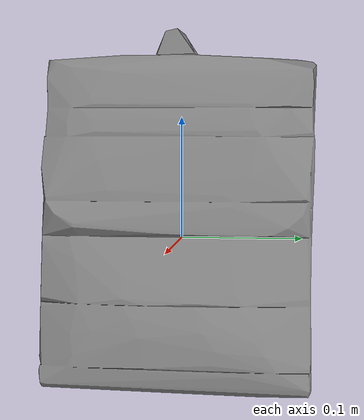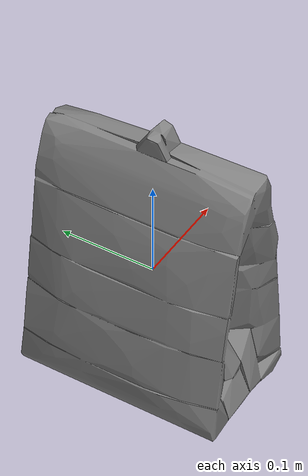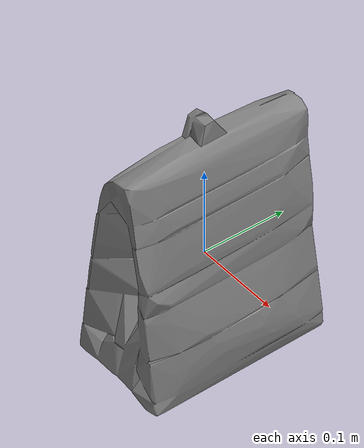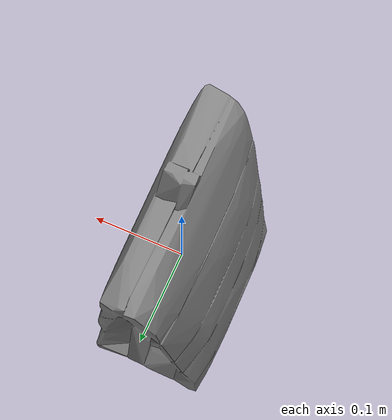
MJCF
<mujoco model="lunch_bag_Olive_Kids_Trains_Planes_Trucks_Munch_n_Lunch_Bag_M">
  <default>
    <default class="visual">
      <geom group="2" type="mesh" contype="0" conaffinity="0" />
    </default>
    <default class="collision">
      <geom group="3" type="mesh" />
    </default>
  </default>
  <asset>
    <mesh file="lunch_bag_Olive_Kids_Trains_Planes_Trucks_Munch_n_Lunch_Bag_M.stl" />
    <mesh file="lunch_bag_Olive_Kids_Trains_Planes_Trucks_Munch_n_Lunch_Bag_M_collision_0.stl" />
    <mesh file="lunch_bag_Olive_Kids_Trains_Planes_Trucks_Munch_n_Lunch_Bag_M_collision_1.stl" />
    <mesh file="lunch_bag_Olive_Kids_Trains_Planes_Trucks_Munch_n_Lunch_Bag_M_collision_2.stl" />
    <mesh file="lunch_bag_Olive_Kids_Trains_Planes_Trucks_Munch_n_Lunch_Bag_M_collision_3.stl" />
    <mesh file="lunch_bag_Olive_Kids_Trains_Planes_Trucks_Munch_n_Lunch_Bag_M_collision_4.stl" />
    <mesh file="lunch_bag_Olive_Kids_Trains_Planes_Trucks_Munch_n_Lunch_Bag_M_collision_5.stl" />
    <mesh file="lunch_bag_Olive_Kids_Trains_Planes_Trucks_Munch_n_Lunch_Bag_M_collision_6.stl" />
    <mesh file="lunch_bag_Olive_Kids_Trains_Planes_Trucks_Munch_n_Lunch_Bag_M_collision_7.stl" />
    <mesh file="lunch_bag_Olive_Kids_Trains_Planes_Trucks_Munch_n_Lunch_Bag_M_collision_8.stl" />
    <mesh file="lunch_bag_Olive_Kids_Trains_Planes_Trucks_Munch_n_Lunch_Bag_M_collision_9.stl" />
    <mesh file="lunch_bag_Olive_Kids_Trains_Planes_Trucks_Munch_n_Lunch_Bag_M_collision_10.stl" />
    <mesh file="lunch_bag_Olive_Kids_Trains_Planes_Trucks_Munch_n_Lunch_Bag_M_collision_11.stl" />
    <mesh file="lunch_bag_Olive_Kids_Trains_Planes_Trucks_Munch_n_Lunch_Bag_M_collision_12.stl" />
    <mesh file="lunch_bag_Olive_Kids_Trains_Planes_Trucks_Munch_n_Lunch_Bag_M_collision_13.stl" />
    <mesh file="lunch_bag_Olive_Kids_Trains_Planes_Trucks_Munch_n_Lunch_Bag_M_collision_14.stl" />
    <mesh file="lunch_bag_Olive_Kids_Trains_Planes_Trucks_Munch_n_Lunch_Bag_M_collision_15.stl" />
  </asset>
  <worldbody>
    <body name="lunch_bag_Olive_Kids_Trains_Planes_Trucks_Munch_n_Lunch_Bag_M">
      <geom mesh="lunch_bag_Olive_Kids_Trains_Planes_Trucks_Munch_n_Lunch_Bag_M" class="visual" />
      <geom mesh="lunch_bag_Olive_Kids_Trains_Planes_Trucks_Munch_n_Lunch_Bag_M_collision_0" class="collision" />
      <geom mesh="lunch_bag_Olive_Kids_Trains_Planes_Trucks_Munch_n_Lunch_Bag_M_collision_1" class="collision" />
      <geom mesh="lunch_bag_Olive_Kids_Trains_Planes_Trucks_Munch_n_Lunch_Bag_M_collision_2" class="collision" />
      <geom mesh="lunch_bag_Olive_Kids_Trains_Planes_Trucks_Munch_n_Lunch_Bag_M_collision_3" class="collision" />
      <geom mesh="lunch_bag_Olive_Kids_Trains_Planes_Trucks_Munch_n_Lunch_Bag_M_collision_4" class="collision" />
      <geom mesh="lunch_bag_Olive_Kids_Trains_Planes_Trucks_Munch_n_Lunch_Bag_M_collision_5" class="collision" />
      <geom mesh="lunch_bag_Olive_Kids_Trains_Planes_Trucks_Munch_n_Lunch_Bag_M_collision_6" class="collision" />
      <geom mesh="lunch_bag_Olive_Kids_Trains_Planes_Trucks_Munch_n_Lunch_Bag_M_collision_7" class="collision" />
      <geom mesh="lunch_bag_Olive_Kids_Trains_Planes_Trucks_Munch_n_Lunch_Bag_M_collision_8" class="collision" />
      <geom mesh="lunch_bag_Olive_Kids_Trains_Planes_Trucks_Munch_n_Lunch_Bag_M_collision_9" class="collision" />
      <geom mesh="lunch_bag_Olive_Kids_Trains_Planes_Trucks_Munch_n_Lunch_Bag_M_collision_10" class="collision" />
      <geom mesh="lunch_bag_Olive_Kids_Trains_Planes_Trucks_Munch_n_Lunch_Bag_M_collision_11" class="collision" />
      <geom mesh="lunch_bag_Olive_Kids_Trains_Planes_Trucks_Munch_n_Lunch_Bag_M_collision_12" class="collision" />
      <geom mesh="lunch_bag_Olive_Kids_Trains_Planes_Trucks_Munch_n_Lunch_Bag_M_collision_13" class="collision" />
      <geom mesh="lunch_bag_Olive_Kids_Trains_Planes_Trucks_Munch_n_Lunch_Bag_M_collision_14" class="collision" />
      <geom mesh="lunch_bag_Olive_Kids_Trains_Planes_Trucks_Munch_n_Lunch_Bag_M_collision_15" class="collision" />
    </body>
  </worldbody>
</mujoco>
